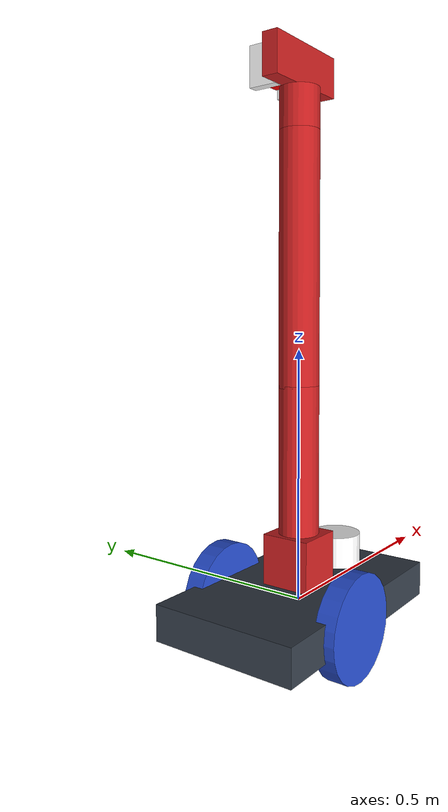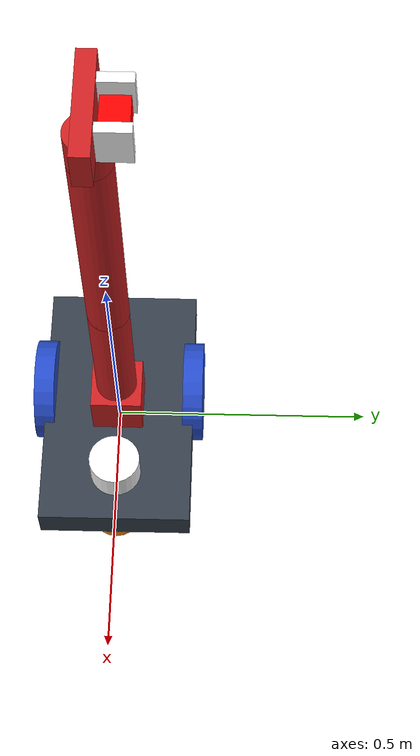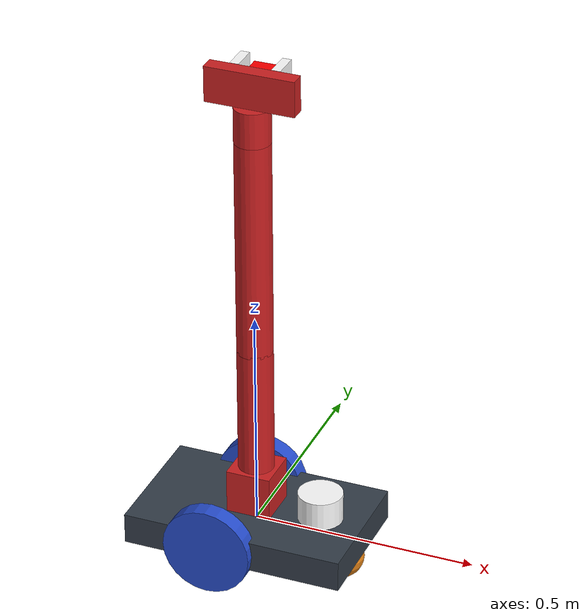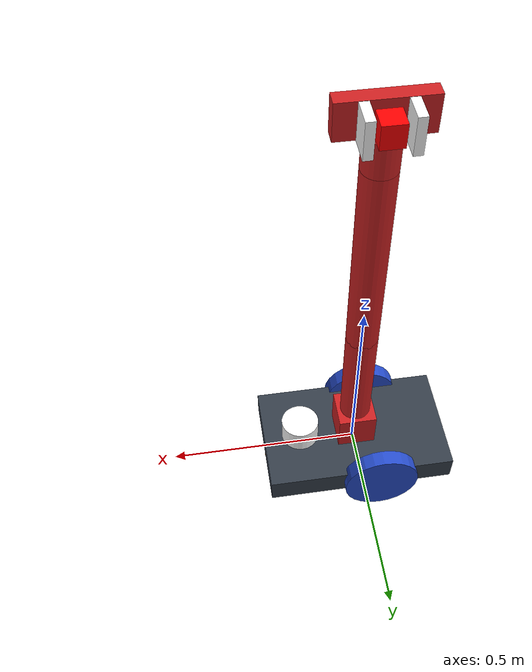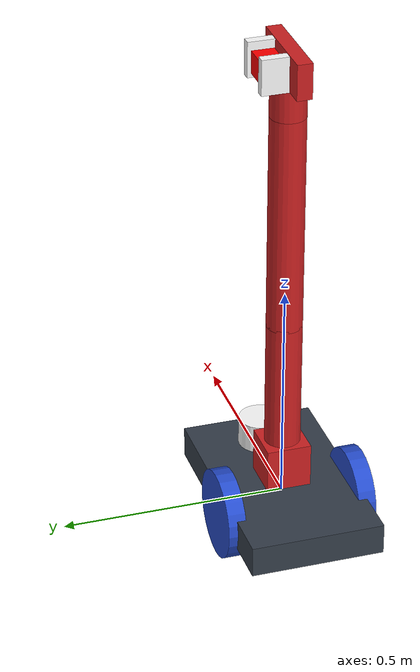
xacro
<?xml version="1.0" ?>
<!-- |    This document was autogenerated by xacro from /home/awais/my_ros_ws/src/robot_urdf/urdf/m2wr_arm2.xacro | -->
<!-- |    EDITING THIS FILE BY HAND IS NOT RECOMMENDED                                 | -->
<robot name="m2wr">
    <material name="black">
        <color rgba="0.0 0.0 0.0 1.0" />
    </material>
    <material name="blue">
        <color rgba="0.203125 0.23828125 0.28515625 1.0" />
    </material>
    <material name="green">
        <color rgba="0.0 0.8 0.0 1.0" />
    </material>
    <material name="grey">
        <color rgba="0.2 0.2 0.2 1.0" />
    </material>
    <material name="orange">
        <color rgba="1.0 0.423529411765 0.0392156862745 1.0" />
    </material>
    <material name="brown">
        <color rgba="0.870588235294 0.811764705882 0.764705882353 1.0" />
    </material>
    <material name="red">
        <color rgba="0.80078125 0.12890625 0.1328125 1.0" />
    </material>
    <material name="white">
        <color rgba="1.0 1.0 1.0 1.0" />
    </material>
    <gazebo reference="base_link">
        <material>Gazebo/Orange</material>
    </gazebo>
    <gazebo reference="link_left_wheel">
        <material>Gazebo/Blue</material>
    </gazebo>
    <gazebo reference="link_right_wheel">
        <material>Gazebo/Blue</material>
    </gazebo>
    <gazebo reference="arm_base_link">
        <material>Gazebo/Red</material>
    </gazebo>
    <gazebo reference="arm_link_01">
        <material>Gazebo/Red</material>
    </gazebo>
    <gazebo reference="arm_link_02">
        <material>Gazebo/Red</material>
    </gazebo>
    <gazebo reference="arm_link_03">
        <material>Gazebo/Red</material>
    </gazebo>
    <gazebo reference="arm_link_03">
        <material>Gazebo/Red</material>
    </gazebo>
    <gazebo reference="arm_link_04">
        <material>Gazebo/Red</material>
    </gazebo>
    <gazebo reference="right_grip_link">
        <material>Gazebo/White</material>
    </gazebo>
    <gazebo reference="left_grip_link">
        <material>Gazebo/White</material>
    </gazebo>
    <gazebo reference="arm_joint_02">
        <provideFeedback>true</provideFeedback>
    </gazebo>
    <!-- The ft_sensor plugin -->
    <gazebo>
        <plugin filename="libgazebo_ros_ft_sensor.so" name="ft_sensor">
            <updateRate>100.0</updateRate>
            <topicName>ft_sensor_topic</topicName>
            <jointName>arm_joint_02</jointName>
        </plugin>
    </gazebo>
    <gazebo>
        <plugin filename="libgazebo_ros_diff_drive.so" name="differential_drive_controller">
            <legacyMode>true</legacyMode>
            <alwaysOn>true</alwaysOn>
            <updateRate>20</updateRate>
            <leftJoint>joint_left_wheel</leftJoint>
            <rightJoint>joint_right_wheel</rightJoint>
            <wheelSeparation>0.3</wheelSeparation>
            <wheelDiameter>0.2</wheelDiameter>
            <torque>0.1</torque>
            <commandTopic>cmd_vel</commandTopic>
            <odometryTopic>odom</odometryTopic>
            <odometryFrame>odom</odometryFrame>
            <robotBaseFrame>base_link</robotBaseFrame>
            <rosDebugLevel>na</rosDebugLevel>
            <publishWheelTF>true</publishWheelTF>
            <publishWheelJointState>true</publishWheelJointState>
            <wheelAcceleration>0</wheelAcceleration>
            <wheelTorque>5</wheelTorque>
            <odometrySource>1</odometrySource>
            <publishTf>1</publishTf>
        </plugin>
    </gazebo>
    <gazebo reference="laser">
        <sensor name="head_hokuyo_sensor" type="ray">
            <pose>0 0 0 0 0 0</pose>
            <visualize>false</visualize>
            <update_rate>20</update_rate>
            <ray>
                <scan>
                    <horizontal>
                        <samples>720</samples>
                        <resolution>1</resolution>
                        <min_angle>-1.570796</min_angle>
                        <max_angle>1.570796</max_angle>
                    </horizontal>
                </scan>
                <range>
                    <min>0.10</min>
                    <max>10.0</max>
                    <resolution>0.01</resolution>
                </range>
                <noise>
                    <type>gaussian</type>
                    <mean>0.0</mean>
                    <stddev>0.01</stddev>
                </noise>
            </ray>
            <plugin filename="libgazebo_ros_laser.so" name="gazebo_ros_head_hokuyo_controller">
                <topicName>m2wr/laser/scan</topicName>
                <frameName>laser</frameName>
            </plugin>
        </sensor>
    </gazebo>
    <gazebo>
        <plugin filename="libgazebo_ros_control.so" name="gazebo_ros_control">
            <robotNamespace>m2wr</robotNamespace>
            <robotSimType>gazebo_ros_control/DefaultRobotHWSim</robotSimType>
            <legacyModeNS>true</legacyModeNS>
        </plugin>
    </gazebo>
    <!-- camera -->
    <gazebo reference="camera_link">
        <sensor name="camera1" type="camera">
            <update_rate>30.0</update_rate>
            <camera name="head">
                <horizontal_fov>1.3962634</horizontal_fov>
                <image>
                    <width>800</width>
                    <height>800</height>
                    <format>R8G8B8</format>
                </image>
                <clip>
                    <near>0.02</near>
                    <far>300</far>
                </clip>
                <noise>
                    <type>gaussian</type>
                    <mean>0.0</mean>
                    <stddev>0.007</stddev>
                </noise>
            </camera>
            <plugin filename="libgazebo_ros_camera.so" name="camera_controller">
                <alwaysOn>true</alwaysOn>
                <updateRate>0.0</updateRate>
                <cameraName>robot/camera1</cameraName>
                <imageTopicName>image_raw</imageTopicName>
                <cameraInfoTopicName>camera_info</cameraInfoTopicName>
                <frameName>camera_link</frameName>
                <hackBaseline>0.07</hackBaseline>
                <distortionK1>0.0</distortionK1>
                <distortionK2>0.0</distortionK2>
                <distortionK3>0.0</distortionK3>
                <distortionT1>0.0</distortionT1>
                <distortionT2>0.0</distortionT2>
            </plugin>
        </sensor>
    </gazebo>
    <link name="base_link">
        <!-- pose and inertial -->
        <pose>0 0 0.1 0 0 0</pose>

<inertial>
            <mass value="5" />
            <origin rpy="0 0 0" xyz="0 0 0.1" />
            <inertia ixx="0.0395416666667" ixy="0" ixz="0" iyy="0.106208333333" iyz="0" izz="0.106208333333" />
        </inertial>

        <collision name="collision_chassis">
            <geometry>
                <box size="0.5 0.3 0.07" />
            </geometry>
        </collision>
        <visual>
            <origin rpy="0 0 0" xyz="0 0 0" />
            <geometry>
                <box size="0.5 0.3 0.07" />
            </geometry>
            <material name="blue" />
        </visual>
        <!-- caster front -->
        <collision name="caster_front_collision">
            <origin rpy=" 0 0 0" xyz="0.2 0 -0.05" />
            <geometry>
                <sphere radius="0.05" />
            </geometry>
            <surface>
                <friction>
                    <ode>
                        <mu>0</mu>
                        <mu2>0</mu2>
                        <slip1>1.0</slip1>
                        <slip2>1.0</slip2>
                    </ode>
                </friction>
            </surface>
        </collision>
        <visual name="caster_front_visual">
            <origin rpy=" 0 0 0" xyz="0.2 0 -0.05" />
            <geometry>
                <sphere radius="0.05" />
            </geometry>
        </visual>
    </link>
    <!-- Create wheels -->
    <link name="link_right_wheel">

<inertial>
            <mass value="0.2" />
            <origin rpy="0 1.5707 1.5707" xyz="0 0 0" />
            <inertia ixx="0.000526666666667" ixy="0" ixz="0" iyy="0.000526666666667" iyz="0" izz="0.001" />
        </inertial>

        <collision name="link_right_wheel_collision">
            <origin rpy="0 1.5707 1.5707" xyz="0 0 0" />
            <geometry>
                <cylinder length="0.04" radius="0.1" />
            </geometry>
        </collision>
        <visual name="link_right_wheel_visual">
            <origin rpy="0 1.5707 1.5707" xyz="0 0 0" />
            <geometry>
                <cylinder length="0.04" radius="0.1" />
            </geometry>
        </visual>
    </link>
    <link name="link_left_wheel">

<inertial>
            <mass value="0.2" />
            <origin rpy="0 1.5707 1.5707" xyz="0 0 0" />
            <inertia ixx="0.000526666666667" ixy="0" ixz="0" iyy="0.000526666666667" iyz="0" izz="0.001" />
        </inertial>

        <collision name="link_right_wheel_collision">
            <origin rpy="0 1.5707 1.5707" xyz="0 0 0" />
            <geometry>
                <cylinder length="0.04" radius="0.1" />
            </geometry>
        </collision>
        <visual name="link_left_wheel_visual">
            <origin rpy="0 1.5707 1.5707" xyz="0 0 0" />
            <geometry>
                <cylinder length="0.04" radius="0.1" />
            </geometry>
        </visual>
    </link>
    <joint name="joint_right_wheel" type="continuous">
        <origin rpy="0 0 0" xyz="-0.05 0.15 0" />
        <child link="link_right_wheel" />
        <parent link="base_link" />
        <axis rpy="0 0 0" xyz="0 1 0" />
        <limit effort="10000" velocity="1000" />
        <joint_properties damping="1.0" friction="1.0" />
    </joint>
    <joint name="joint_left_wheel" type="continuous">
        <origin rpy="0 0 0" xyz="-0.05 -0.15 0" />
        <child link="link_left_wheel" />
        <parent link="base_link" />
        <axis rpy="0 0 0" xyz="0 1 0" />
        <limit effort="10000" velocity="1000" />
        <joint_properties damping="1.0" friction="1.0" />
    </joint>
    <link name="laser">

<inertial>
            <origin rpy="0 0 0" xyz="0 0 0" />
            <mass value="1" />
            <inertia ixx="0.0014583333333333334" ixy="0" ixz="0" iyy="0.0014583333333333334" iyz="0" izz="0.0012500000000000002" />
        </inertial>

        <visual>
            <origin rpy="0 0 0" xyz="0 0 0" />
            <geometry>
                <cylinder length="0.1" radius="0.05" />
            </geometry>
            <material name="white" />
        </visual>
        <collision>
            <origin rpy="0 0 0" xyz="0 0 0" />
            <geometry>
                <cylinder length="0.1" radius="0.05" />
            </geometry>
        </collision>
    </link>
    <joint name="joint_laser" type="fixed">
        <origin rpy="0 0 0" xyz="0.15 0 0.05" />
        <parent link="base_link" />
        <child link="laser" />
    </joint>
    <!--arm definition -->
    <link name="arm_base_link">

<inertial>
            <mass value="0.1" />
            <origin rpy="0 0 0" xyz="0 0 0" />
            <inertia ixx="0.0000416666667" ixy="0" ixz="0" iyy="0.0000416666667" iyz="0" izz="0.0000416666667" />
        </inertial>

        <collision>
            <origin rpy="0 0 0" xyz="0 0 0" />
            <geometry>
                <box size="0.1 0.1 0.1" />
            </geometry>
        </collision>
        <visual>
            <origin rpy="0 0 0" xyz="0 0 0" />
            <geometry>
                <box size="0.1 0.1 0.1" />
            </geometry>
            <material name="red" />
        </visual>
    </link>
    <joint name="arm_base_to_base" type="fixed">
        <origin rpy="0 0 0" xyz="0 0 0.085" />
        <parent link="base_link" />
        <child link="arm_base_link" />
    </joint>
    <link name="arm_link_01">

<inertial>
            <mass value="0.025" />
            <origin rpy="0 0 0" xyz="0 0 0" />
            <inertia ixx="0.000010279" ixy="0" ixz="0" iyy="0.000010279" iyz="0" izz="0.000007225" />
        </inertial>

        <collision>
            <origin rpy="0 0 0" xyz="0 0 0" />
            <geometry>
                <cylinder length="0.51" radius="0.04" />
            </geometry>
        </collision>
        <visual>
            <origin rpy="0 0 0" xyz="0 0 0" />
            <geometry>
                <cylinder length="0.51" radius="0.04" />
            </geometry>
            <material name="red" />
        </visual>
    </link>
    <joint name="arm_joint_01" type="revolute">
        <axis xyz="0 0 1" />
        <limit effort="1000.0" lower="-3.14" upper="3.14" velocity="0.2" />
        <origin rpy="0 0 0" xyz="0 0 0.09" />
        <parent link="arm_base_link" />
        <child link="arm_link_01" />
    </joint>
    <link name="arm_link_02">

<inertial>
            <mass value="0.025" />
            <origin rpy="0 0 0" xyz="0 0 0" />
            <inertia ixx="0.000010279" ixy="0" ixz="0" iyy="0.000010279" iyz="0" izz="0.000007225" />
        </inertial>

        <collision>
            <origin rpy="0 0 0" xyz="0 0 0.25" />
            <geometry>
                <cylinder length="0.5" radius="0.04" />
            </geometry>
        </collision>
        <visual>
            <origin rpy="0 0 0" xyz="0 0 0.25" />
            <geometry>
                <cylinder length="0.5" radius="0.04" />
            </geometry>
            <material name="red" />
        </visual>
    </link>
    <joint name="arm_joint_02" type="revolute">
        <axis xyz="1 0 0" />
        <limit effort="1000.0" lower="-1.8" upper="1.8" velocity="0.2" />
        <origin rpy="0 0 0" xyz="0 0 0.25" />
        <parent link="arm_link_01" />
        <child link="arm_link_02" />
    </joint>
    <link name="arm_link_03">

<inertial>
            <mass value="0.025" />
            <origin rpy="0 0 0" xyz="0 0 0" />
            <inertia ixx="0.000010279" ixy="0" ixz="0" iyy="0.000010279" iyz="0" izz="0.000007225" />
        </inertial>

        <collision>
            <origin rpy="0 0 0" xyz="0 0 0.04" />
            <geometry>
                <cylinder length="0.08" radius="0.04" />
            </geometry>
        </collision>
        <visual>
            <origin rpy="0 0 0" xyz="0 0 0.04" />
            <geometry>
                <cylinder length="0.08" radius="0.04" />
            </geometry>
            <material name="red" />
        </visual>
    </link>
    <joint name="arm_joint_03" type="revolute">
        <axis xyz="1 0 0" />
        <limit effort="1000.0" lower="-1.8" upper="1.8" velocity="0.2" />
        <origin rpy="0 0 0" xyz="0 0 0.50" />
        <parent link="arm_link_02" />
        <child link="arm_link_03" />
    </joint>
    <link name="arm_link_04">

<inertial>
            <mass value="0.025" />
            <origin rpy="0 0 0" xyz="0 0 0" />
            <inertia ixx="0.000010279" ixy="0" ixz="0" iyy="0.000010279" iyz="0" izz="0.000007225" />
        </inertial>

        <collision>
            <origin rpy="0 0 1.57" xyz="0 0 0.04" />
            <geometry>
                <box size="0.034 0.2 0.08" />
            </geometry>
        </collision>
        <visual>
            <origin rpy="0 0 1.57" xyz="0 0 0.04" />
            <geometry>
                <box size="0.034 0.2 0.08" />
            </geometry>
            <material name="red" />
        </visual>
    </link>
    <joint name="arm_joint_04" type="revolute">
        <axis xyz="1 0 0" />
        <limit effort="1000.0" lower="-1.8" upper="1.8" velocity="0.5" />
        <origin rpy="0 0 0" xyz="0 0 0.08" />
        <parent link="arm_link_03" />
        <child link="arm_link_04" />
    </joint>
    <link name="camera_link">
        <collision>
            <origin rpy="0 0 0" xyz="0 0 0" />
            <geometry>
                <box size="0.05 0.05 0.05" />
            </geometry>
        </collision>
        <visual>
            <origin rpy="0 0 0" xyz="0 0 0" />
            <geometry>
                <box size="0.05 0.05 0.05" />
            </geometry>
            <material name="red">
                <color rgba="1 0 0 1" />
            </material>
        </visual>

<inertial>
            <mass value="1e-5" />
            <origin rpy="0 0 0" xyz="0 0 0" />
            <inertia ixx="1e-6" ixy="0" ixz="0" iyy="1e-6" iyz="0" izz="1e-6" />
        </inertial>

    </link>
    <joint name="camera_joint" type="fixed">
        <axis xyz="0 0 0" />
        <origin rpy="0 0 1.57" xyz="0 0.048 0.04" />
        <parent link="arm_link_04" />
        <child link="camera_link" />
    </joint>
    <link name="right_grip_link">

<inertial>
            <mass value="0.01" />
            <origin rpy="0 0 0" xyz="0 0 0" />
            <inertia ixx="0.000010279" ixy="0" ixz="0" iyy="0.000010279" iyz="0" izz="0.000007225" />
        </inertial>

        <collision>
            <origin rpy="0 3.1415 -1.57" xyz="-0.032 0.048 0.04" />
            <geometry>
                <box size="0.06 0.02 0.08" />
            </geometry>
        </collision>
        <visual>
            <origin rpy="0 3.1415 -1.57" xyz="-0.032 0.048 0.04" />
            <geometry>
                <box size="0.06 0.02 0.08" />
            </geometry>
            <material name="white" />
        </visual>
    </link>
    <joint name="right_grip_joint" type="prismatic">
        <axis xyz="1 0 0" />
        <limit effort="1000.0" lower="-0.04" upper="0.035" velocity="6.5" />
        <origin rpy="0 0 0" xyz="-0.015 0 0.0" />
        <parent link="arm_link_04" />
        <child link="right_grip_link" />
    </joint>
    <link name="left_grip_link">

<inertial>
            <mass value="0.01" />
            <origin rpy="0 0 0" xyz="0 0 0" />
            <inertia ixx="0.000010279" ixy="0" ixz="0" iyy="0.000010279" iyz="0" izz="0.000007225" />
        </inertial>

        <collision>
            <origin rpy="0 3.1415 -1.57" xyz="0.06 0.048 0.04" />
            <geometry>
                <box size="0.06 0.02 0.08" />
            </geometry>
        </collision>
        <visual>
            <origin rpy="0 3.1415 -1.57" xyz="0.06 0.048 0.04" />
            <geometry>
                <box size="0.06 0.02 0.08" />
            </geometry>
            <material name="white" />
        </visual>
    </link>
    <joint name="left_grip_joint" type="prismatic">
        <axis xyz="1 0 0" />
        <limit effort="1000.0" lower="-0.035" upper="0.04" velocity="6.5" />
        <origin rpy="0 0 0" xyz="-0.015 0 0.0" />
        <parent link="arm_link_04" />
        <child link="left_grip_link" />
    </joint>

<transmission name="arm_joint_01_trans">
        <type>transmission_interface/SimpleTransmission</type>
        <joint name="arm_joint_01">
            <hardwareInterface>hardware_interface/EffortJointInterface</hardwareInterface>
        </joint>
        <actuator name="motor1">
            <hardwareInterface>hardware_interface/EffortJointInterface</hardwareInterface>
            <mechanicalInterface>1</mechanicalInterface>
        </actuator>
    </transmission>
    <transmission name="arm_joint_02_trans">
        <type>transmission_interface/SimpleTransmission</type>
        <joint name="arm_joint_02">
            <hardwareInterface>hardware_interface/EffortJointInterface</hardwareInterface>
        </joint>
        <actuator name="motor2">
            <hardwareInterface>hardware_interface/EffortJointInterface</hardwareInterface>
            <mechanicalInterface>1</mechanicalInterface>
        </actuator>
    </transmission>
    <transmission name="arm_joint_03_trans">
        <type>transmission_interface/SimpleTransmission</type>
        <joint name="arm_joint_03">
            <hardwareInterface>hardware_interface/EffortJointInterface</hardwareInterface>
        </joint>
        <actuator name="motor3">
            <hardwareInterface>hardware_interface/EffortJointInterface</hardwareInterface>
            <mechanicalInterface>1</mechanicalInterface>
        </actuator>
    </transmission>
    <transmission name="arm_joint_04_trans">
        <type>transmission_interface/SimpleTransmission</type>
        <joint name="arm_joint_04">
            <hardwareInterface>hardware_interface/EffortJointInterface</hardwareInterface>
        </joint>
        <actuator name="motor4">
            <hardwareInterface>hardware_interface/EffortJointInterface</hardwareInterface>
            <mechanicalInterface>1</mechanicalInterface>
        </actuator>
    </transmission>
    <transmission name="left_grip_trans">
        <type>transmission_interface/SimpleTransmission</type>
        <joint name="left_grip_joint">
            <hardwareInterface>hardware_interface/EffortJointInterface</hardwareInterface>
        </joint>
        <actuator name="motor5">
            <hardwareInterface>hardware_interface/EffortJointInterface</hardwareInterface>
            <mechanicalInterface>1</mechanicalInterface>
        </actuator>
    </transmission>
    <transmission name="right_grip_trans">
        <type>transmission_interface/SimpleTransmission</type>
        <joint name="right_grip_joint">
            <hardwareInterface>hardware_interface/EffortJointInterface</hardwareInterface>
        </joint>
        <actuator name="motor6">
            <hardwareInterface>hardware_interface/EffortJointInterface</hardwareInterface>
            <mechanicalInterface>1</mechanicalInterface>
        </actuator>
    </transmission>
    <transmission name="trans_joint_right_wheel">
        <type>transmission_interface/SimpleTransmission</type>
        <joint name="joint_right_wheel">
            <hardwareInterface>hardware_interface/EffortJointInterface</hardwareInterface>
        </joint>
        <actuator name="joint_right_wheel_motor">
            <hardwareInterface>hardware_interface/EffortJointInterface</hardwareInterface>
            <mechanicalReduction>1</mechanicalReduction>
        </actuator>
    </transmission>
    <transmission name="trans_joint_left_wheel">
        <type>transmission_interface/SimpleTransmission</type>
        <joint name="joint_left_wheel">
            <hardwareInterface>hardware_interface/EffortJointInterface</hardwareInterface>
        </joint>
        <actuator name="joint_left_wheel_motor">
            <hardwareInterface>hardware_interface/EffortJointInterface</hardwareInterface>
            <mechanicalReduction>1</mechanicalReduction>
        </actuator>
    </transmission>
    <transmission name="trans_arm_joint_01">
        <type>transmission_interface/SimpleTransmission</type>
        <joint name="arm_joint_01">
            <hardwareInterface>hardware_interface/EffortJointInterface</hardwareInterface>
        </joint>
        <actuator name="arm_joint_01_motor">
            <hardwareInterface>hardware_interface/EffortJointInterface</hardwareInterface>
            <mechanicalReduction>1</mechanicalReduction>
        </actuator>
    </transmission>
    <transmission name="trans_arm_joint_02">
        <type>transmission_interface/SimpleTransmission</type>
        <joint name="arm_joint_02">
            <hardwareInterface>hardware_interface/EffortJointInterface</hardwareInterface>
        </joint>
        <actuator name="arm_joint_02_motor">
            <hardwareInterface>hardware_interface/EffortJointInterface</hardwareInterface>
            <mechanicalReduction>1</mechanicalReduction>
        </actuator>
    </transmission>
    <transmission name="trans_arm_joint_03">
        <type>transmission_interface/SimpleTransmission</type>
        <joint name="arm_joint_03">
            <hardwareInterface>hardware_interface/EffortJointInterface</hardwareInterface>
        </joint>
        <actuator name="arm_joint_03_motor">
            <hardwareInterface>hardware_interface/EffortJointInterface</hardwareInterface>
            <mechanicalReduction>1</mechanicalReduction>
        </actuator>
    </transmission>
    <transmission name="trans_arm_joint_04">
        <type>transmission_interface/SimpleTransmission</type>
        <joint name="arm_joint_04">
            <hardwareInterface>hardware_interface/EffortJointInterface</hardwareInterface>
        </joint>
        <actuator name="arm_joint_04_motor">
            <hardwareInterface>hardware_interface/EffortJointInterface</hardwareInterface>
            <mechanicalReduction>1</mechanicalReduction>
        </actuator>
    </transmission>
    <transmission name="trans_right_grip_joint">
        <type>transmission_interface/SimpleTransmission</type>
        <joint name="right_grip_joint">
            <hardwareInterface>hardware_interface/EffortJointInterface</hardwareInterface>
        </joint>
        <actuator name="right_grip_joint_motor">
            <hardwareInterface>hardware_interface/EffortJointInterface</hardwareInterface>
            <mechanicalReduction>1</mechanicalReduction>
        </actuator>
    </transmission>
    <transmission name="trans_left_grip_joint">
        <type>transmission_interface/SimpleTransmission</type>
        <joint name="left_grip_joint">
            <hardwareInterface>hardware_interface/EffortJointInterface</hardwareInterface>
        </joint>
        <actuator name="left_grip_joint_motor">
            <hardwareInterface>hardware_interface/EffortJointInterface</hardwareInterface>
            <mechanicalReduction>1</mechanicalReduction>
        </actuator>
    </transmission>
    <gazebo>
        <plugin name="gazebo_ros_control" filename="libgazebo_ros_control.so">
            <robotNamespace>/</robotNamespace>
        </plugin>
    </gazebo>
</robot>
